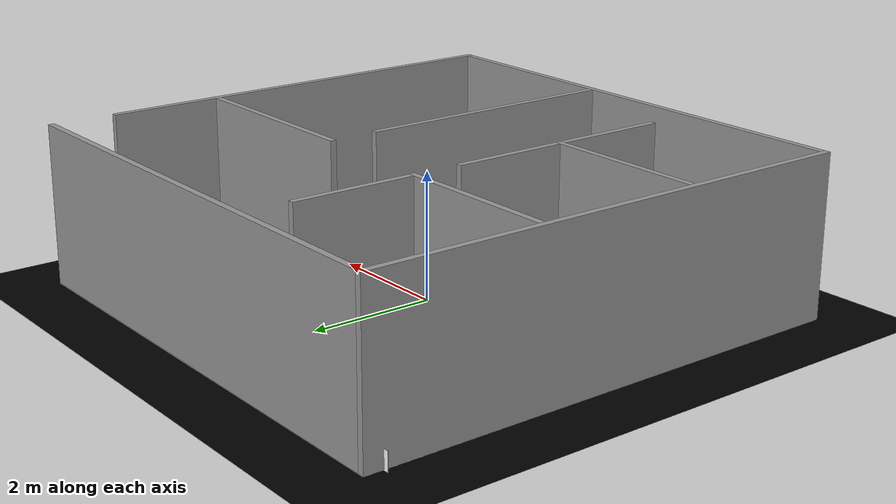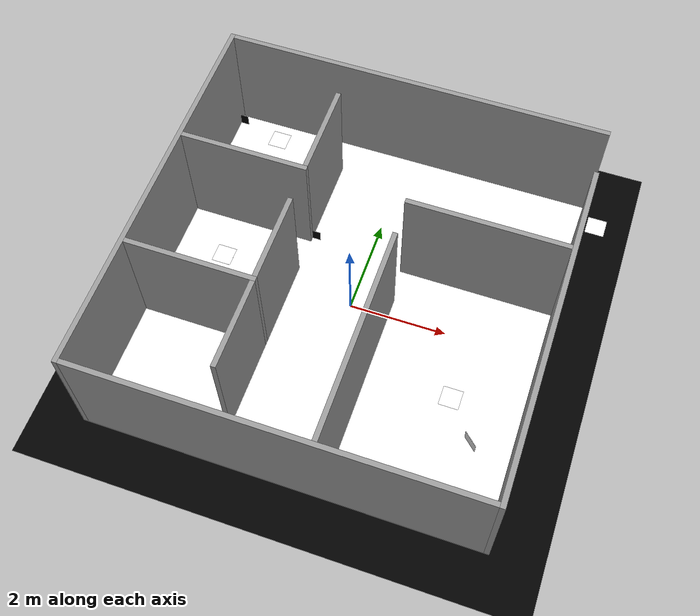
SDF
<sdf version="1.4">
  <world name="default">

      <physics name="1ms" type="ignored">
      <max_step_size>0.001</max_step_size>
      <real_time_factor>1.0</real_time_factor>
    </physics>
    <plugin
      filename="gz-sim-physics-system"
      name="gz::sim::systems::Physics">
    </plugin>
    <plugin
      filename="gz-sim-user-commands-system"
      name="gz::sim::systems::UserCommands">
    </plugin>
    <plugin
      filename="gz-sim-scene-broadcaster-system"
      name="gz::sim::systems::SceneBroadcaster">
    </plugin>

    <plugin
        filename="gz-sim-sensors-system"
        name="gz::sim::systems::Sensors">
        <render_engine>ogre2</render_engine>
    </plugin>

    <scene>
      <ambient>0.4 0.4 0.4 1</ambient>
      <background>0.7 0.7 0.7 1</background>
      <shadows>false</shadows>
    </scene>

    <!-- Arena lights -->
    <include>
    <name>light1</name>
      <uri>model://simple_light</uri>
      <pose>2 2 10 0 0 0</pose>
    </include>

    <include>
    <name>light2</name>
      <uri>model://simple_light</uri>
      <pose>-2 2 10 0 0 0</pose>
    </include>

    <include>
    <name>light3</name>
      <uri>model://simple_light</uri>
      <pose>-2 -2 10 0 0 0</pose>
    </include>

    <include>
    <name>light4</name>
      <uri>model://simple_light</uri>
      <pose>2 -2 10 0 0 0</pose>
    </include>

    <include>
      <uri>model://office_floor</uri>
    </include>

    <include>
      <uri>model://office_model</uri>
    </include>

    <include>
      <name>goal_marker_0</name>
      <uri>model://goal_marker_5</uri>
      <pose>2.5 -1.3 0.01 0 0 0</pose>
    </include>

    <include>
      <name>goal_marker_1</name>
      <uri>model://goal_marker_5</uri>
      <pose>-2.9 0.3 0.01 0 0 0</pose>
    </include>

    <include>
      <name>goal_marker_2</name>
      <uri>model://goal_marker_5</uri>
      <pose>-2.9 3.5 0.01 0 0 0</pose>
    </include>

    <include>
      <name>goal_marker_3</name>
      <uri>model://goal_marker_5</uri>
      <pose>4.3 3.5 0.01 0 0 0</pose>
    </include>

    <include>
      <name>marker_0</name>
      <uri>model://aruco_marker_0</uri>
      <pose>-1.40 -2.6 0.091 0 0 3.141592654</pose>
    </include>

    <include>
      <name>marker_1</name>
      <uri>model://aruco_marker_1</uri>
      <pose>0.0 -3.6 0.091 0 0 3.141592654</pose>
    </include>

    <include>
      <name>marker_2</name>
      <uri>model://aruco_marker_2</uri>
      <pose>3.1 -2.1 0.091 0 0 2.4</pose>
    </include>

    <include>
      <name>marker_3</name>
      <uri>model://aruco_marker_3</uri>
      <pose>-1.3 1.3 0.091 0 0 0</pose>
    </include>

    <include>
      <name>marker_4</name>
      <uri>model://aruco_marker_4</uri>
      <pose>-3.9 3.7 0.091 0 0 0</pose>
    </include>

    <include>
      <name>marker_5</name>
      <uri>model://aruco_marker_5</uri>
      <pose>-1.9 3.1 0.091 0 0 3.141592</pose>
    </include>

    <include>
      <name>marker_6</name>
      <uri>model://aruco_marker_6</uri>
      <pose>4.0 3.1 0.091 0 0 3.141592</pose>
    </include>

    <gui fullscreen='0'>
      <camera name='user_camera'>
        <pose>-8.0 -8.0 10.0 0 0.785 0.785</pose>
        <view_controller>orbit</view_controller>
      </camera>
    </gui>

  </world>
</sdf>

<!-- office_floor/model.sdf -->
<sdf version="1.5">
        <model name="puzzlebot_base">
            <static>true</static>
        <link name="link">
            <pose>0 0 0.0 0 0 1.5708 </pose>
            <collision name="collision">
                <geometry>
                <plane>
                    <normal>0 0 1</normal>
                    <size>10.0 10.0</size>
                </plane>
                </geometry>
                <surface>
                <contact>
                    <collide_bitmask>0xffff</collide_bitmask>
                    </contact>
                        <friction>
                        <ode>
                            <mu>100</mu>
                            <mu2>50</mu2>
                        </ode>
                        </friction>
                </surface>
            </collision>
            <visual name="visual">
                <pose>0 0 -0.001 0 0 0</pose>
                    <cast_shadows>false</cast_shadows>
                    <geometry>
                    <plane>
                        <normal>0 0 1</normal>
                        <size>10.0 10.0</size>
                    </plane>
                    </geometry>
                        <material>
                            <ambient>0 0 0 1</ambient>
                            <diffuse>0 0 0 1</diffuse>
                            <specular>0 0 0 1</specular>
                        </material>
                </visual>

                <visual name="mcr2_logo">
                <pose>0 0 0.0 0 0 0</pose>
                <cast_shadows>false</cast_shadows>
                <geometry>
                    <plane>
                    <normal>0 0 1</normal>
                    <size>8.0 8.0</size>
                    </plane>
                </geometry>
                        <material>
                            <ambient>1 1 1 1</ambient>
                            <diffuse>1 1 1 1</diffuse>
                            <specular>1 1 1 1</specular>
                            <pbr>
                                <metal>
                                <albedo_map>model://office_floor/materials/textures/puzzlebot_wood_7.png</albedo_map>
                                <normal_map>model://office_floor/materials/textures/puzzlebot_wood_7.png</normal_map>
                                </metal>
                            </pbr>
                        </material>
                </visual>
            </link>

        </model>
    </sdf>

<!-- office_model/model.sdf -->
<sdf version="1.5">
  <model name='office'>

    <static>1</static>

    <link name='Wall_10'>
        <pose>-3.950 0.0 1.25 0.0 0.0 0.0</pose>

        <visual name='Wall_10_Visual'>
            <pose>0 0 0 0 -0 0</pose>
            <geometry>
                <box>
                    <size>0.1 8.0 2.5</size>
                </box>
            </geometry>
              <material>
                <ambient>0.6 0.6 0.6 1</ambient>
                <diffuse>0.6 0.6 0.6 1</diffuse>
                <specular>0.6 0.6 0.6 1</specular>
              </material>
        <cast_shadows>0</cast_shadows>
      </visual>

      <collision name='Wall_10_Collision'>
        <max_contacts>10</max_contacts>
        <pose>0 0 0.0 0 0 0</pose>
        <geometry>
          <box>
            <size>0.1 8.0 2.5</size>
          </box>
        </geometry>
        <surface>
          <friction>
            <ode>
              <mu>1</mu>
              <mu2>1</mu2>
              <fdir1>0 0 0</fdir1>
              <slip1>0</slip1>
              <slip2>0</slip2>
            </ode>
          </friction>
          <bounce>
            <restitution_coefficient>0</restitution_coefficient>
            <threshold>1e+06</threshold>
          </bounce>
          <contact>
            <collide_without_contact>0</collide_without_contact>
            <collide_without_contact_bitmask>1</collide_without_contact_bitmask>
            <collide_bitmask>1</collide_bitmask>
            <ode>
              <soft_cfm>0</soft_cfm>
              <soft_erp>0.2</soft_erp>
              <kp>1e+13</kp>
              <kd>1</kd>
              <max_vel>0.01</max_vel>
              <min_depth>0</min_depth>
            </ode>
            <bullet>
              <split_impulse>1</split_impulse>
              <split_impulse_penetration_threshold>-0.01</split_impulse_penetration_threshold>
              <soft_cfm>0</soft_cfm>
              <soft_erp>0.2</soft_erp>
              <kp>1e+13</kp>
              <kd>1</kd>
            </bullet>
          </contact>
        </surface>
      </collision>
    </link>

    <link name='Wall_20'>
          <pose>3.950 -0.525 1.25 0.0 0.0 0.0</pose>

          <visual name='Wall_20_Visual'>
              <pose>0 0 0 0 -0 0</pose>
              <geometry>
                  <box>
                      <size>0.1 6.950 2.5</size>
                  </box>
              </geometry>
              <material>
                <ambient>0.6 0.6 0.6 1</ambient>
                <diffuse>0.6 0.6 0.6 1</diffuse>
                <specular>0.6 0.6 0.6 1</specular>
              </material>
          <cast_shadows>0</cast_shadows>
        </visual>

        <collision name='Wall_20_Collision'>
          <max_contacts>10</max_contacts>
          <pose>0 0 0.0 0 0 0</pose>
          <geometry>
            <box>
              <size>0.1 6.950 2.5</size>
            </box>
          </geometry>
          <surface>
            <friction>
              <ode>
                <mu>1</mu>
                <mu2>1</mu2>
                <fdir1>0 0 0</fdir1>
                <slip1>0</slip1>
                <slip2>0</slip2>
              </ode>
            </friction>
            <bounce>
              <restitution_coefficient>0</restitution_coefficient>
              <threshold>1e+06</threshold>
            </bounce>
            <contact>
              <collide_without_contact>0</collide_without_contact>
              <collide_without_contact_bitmask>1</collide_without_contact_bitmask>
              <collide_bitmask>1</collide_bitmask>
              <ode>
                <soft_cfm>0</soft_cfm>
                <soft_erp>0.2</soft_erp>
                <kp>1e+13</kp>
                <kd>1</kd>
                <max_vel>0.01</max_vel>
                <min_depth>0</min_depth>
              </ode>
              <bullet>
                <split_impulse>1</split_impulse>
                <split_impulse_penetration_threshold>-0.01</split_impulse_penetration_threshold>
                <soft_cfm>0</soft_cfm>
                <soft_erp>0.2</soft_erp>
                <kp>1e+13</kp>
                <kd>1</kd>
              </bullet>
            </contact>
          </surface>
        </collision>
    </link>

    <link name='Wall_30'>
        <pose>0.0 -3.950 1.25 0.0 0.0 0.0</pose>

        <visual name='Wall_30_Visual'>
            <pose>0 0 0 0 -0 0</pose>
            <geometry>
                <box>
                    <size>7.8 0.1 2.5</size>
                </box>
            </geometry>
              <material>
                <ambient>0.6 0.6 0.6 1</ambient>
                <diffuse>0.6 0.6 0.6 1</diffuse>
                <specular>0.6 0.6 0.6 1</specular>
              </material>
        <cast_shadows>0</cast_shadows>
      </visual>

      <collision name='Wall_30_Collision'>
        <max_contacts>10</max_contacts>
        <pose>0 0 0.0 0 0 0</pose>
        <geometry>
          <box>
            <size>7.8 0.1 2.5</size>
          </box>
        </geometry>
        <surface>
          <friction>
            <ode>
              <mu>1</mu>
              <mu2>1</mu2>
              <fdir1>0 0 0</fdir1>
              <slip1>0</slip1>
              <slip2>0</slip2>
            </ode>
          </friction>
          <bounce>
            <restitution_coefficient>0</restitution_coefficient>
            <threshold>1e+06</threshold>
          </bounce>
          <contact>
            <collide_without_contact>0</collide_without_contact>
            <collide_without_contact_bitmask>1</collide_without_contact_bitmask>
            <collide_bitmask>1</collide_bitmask>
            <ode>
              <soft_cfm>0</soft_cfm>
              <soft_erp>0.2</soft_erp>
              <kp>1e+13</kp>
              <kd>1</kd>
              <max_vel>0.01</max_vel>
              <min_depth>0</min_depth>
            </ode>
            <bullet>
              <split_impulse>1</split_impulse>
              <split_impulse_penetration_threshold>-0.01</split_impulse_penetration_threshold>
              <soft_cfm>0</soft_cfm>
              <soft_erp>0.2</soft_erp>
              <kp>1e+13</kp>
              <kd>1</kd>
            </bullet>
          </contact>
        </surface>
      </collision>
    </link>

    <link name='Wall_40'>
        <pose>0.05 3.950 1.25 0.0 0.0 0.0</pose>

        <visual name='Wall_40_Visual'>
            <pose>0 0 0 0 -0 0</pose>
            <geometry>
                <box>
                    <size>7.9 0.1 2.5</size>
                </box>
            </geometry>
              <material>
                <ambient>0.6 0.6 0.6 1</ambient>
                <diffuse>0.6 0.6 0.6 1</diffuse>
                <specular>0.6 0.6 0.6 1</specular>
              </material>
        <cast_shadows>0</cast_shadows>
      </visual>

      <collision name='Wall_40_Collision'>
        <max_contacts>10</max_contacts>
        <pose>0 0 0.0 0 0 0</pose>
        <geometry>
          <box>
            <size>7.9 0.1 2.5</size>
          </box>
        </geometry>
        <surface>
          <friction>
            <ode>
              <mu>1</mu>
              <mu2>1</mu2>
              <fdir1>0 0 0</fdir1>
              <slip1>0</slip1>
              <slip2>0</slip2>
            </ode>
          </friction>
          <bounce>
            <restitution_coefficient>0</restitution_coefficient>
            <threshold>1e+06</threshold>
          </bounce>
          <contact>
            <collide_without_contact>0</collide_without_contact>
            <collide_without_contact_bitmask>1</collide_without_contact_bitmask>
            <collide_bitmask>1</collide_bitmask>
            <ode>
              <soft_cfm>0</soft_cfm>
              <soft_erp>0.2</soft_erp>
              <kp>1e+13</kp>
              <kd>1</kd>
              <max_vel>0.01</max_vel>
              <min_depth>0</min_depth>
            </ode>
            <bullet>
              <split_impulse>1</split_impulse>
              <split_impulse_penetration_threshold>-0.01</split_impulse_penetration_threshold>
              <soft_cfm>0</soft_cfm>
              <soft_erp>0.2</soft_erp>
              <kp>1e+13</kp>
              <kd>1</kd>
            </bullet>
          </contact>
        </surface>
      </collision>
    </link>

    <link name='Wall_50'>
        <pose>-1.35 -2.3 1.25 0.0 0.0 0.0</pose>

        <visual name='Wall_50_Visual'>
            <pose>0 0 0 0 -0 0</pose>
            <geometry>
                <box>
                    <size>0.1 1.8 2.5</size>
                </box>
            </geometry>
              <material>
                <ambient>0.6 0.6 0.6 1</ambient>
                <diffuse>0.6 0.6 0.6 1</diffuse>
                <specular>0.6 0.6 0.6 1</specular>
              </material>
        <cast_shadows>0</cast_shadows>
      </visual>

      <collision name='Wall_50_Collision'>
        <max_contacts>10</max_contacts>
        <pose>0 0 0.0 0 0 0</pose>
        <geometry>
          <box>
            <size>0.1 1.8 2.5</size>
          </box>
        </geometry>
        <surface>
          <friction>
            <ode>
              <mu>1</mu>
              <mu2>1</mu2>
              <fdir1>0 0 0</fdir1>
              <slip1>0</slip1>
              <slip2>0</slip2>
            </ode>
          </friction>
          <bounce>
            <restitution_coefficient>0</restitution_coefficient>
            <threshold>1e+06</threshold>
          </bounce>
          <contact>
            <collide_without_contact>0</collide_without_contact>
            <collide_without_contact_bitmask>1</collide_without_contact_bitmask>
            <collide_bitmask>1</collide_bitmask>
            <ode>
              <soft_cfm>0</soft_cfm>
              <soft_erp>0.2</soft_erp>
              <kp>1e+13</kp>
              <kd>1</kd>
              <max_vel>0.01</max_vel>
              <min_depth>0</min_depth>
            </ode>
            <bullet>
              <split_impulse>1</split_impulse>
              <split_impulse_penetration_threshold>-0.01</split_impulse_penetration_threshold>
              <soft_cfm>0</soft_cfm>
              <soft_erp>0.2</soft_erp>
              <kp>1e+13</kp>
              <kd>1</kd>
            </bullet>
          </contact>
        </surface>
      </collision>
    </link>

    <link name='Wall_60'>
        <pose>0.75 -1.75 1.25 0.0 0.0 0.0</pose>

        <visual name='Wall_60_Visual'>
            <pose>0 0 0 0 -0 0</pose>
            <geometry>
                <box>
                    <size>0.1 4.3 2.5</size>
                </box>
            </geometry>
              <material>
                <ambient>0.6 0.6 0.6 1</ambient>
                <diffuse>0.6 0.6 0.6 1</diffuse>
                <specular>0.6 0.6 0.6 1</specular>
              </material>
        <cast_shadows>0</cast_shadows>
      </visual>

      <collision name='Wall_60_Collision'>
        <max_contacts>10</max_contacts>
        <pose>0 0 0.0 0 0 0</pose>
        <geometry>
          <box>
            <size>0.1 4.3 2.5</size>
          </box>
        </geometry>
        <surface>
          <friction>
            <ode>
              <mu>1</mu>
              <mu2>1</mu2>
              <fdir1>0 0 0</fdir1>
              <slip1>0</slip1>
              <slip2>0</slip2>
            </ode>
          </friction>
          <bounce>
            <restitution_coefficient>0</restitution_coefficient>
            <threshold>1e+06</threshold>
          </bounce>
          <contact>
            <collide_without_contact>0</collide_without_contact>
            <collide_without_contact_bitmask>1</collide_without_contact_bitmask>
            <collide_bitmask>1</collide_bitmask>
            <ode>
              <soft_cfm>0</soft_cfm>
              <soft_erp>0.2</soft_erp>
              <kp>1e+13</kp>
              <kd>1</kd>
              <max_vel>0.01</max_vel>
              <min_depth>0</min_depth>
            </ode>
            <bullet>
              <split_impulse>1</split_impulse>
              <split_impulse_penetration_threshold>-0.01</split_impulse_penetration_threshold>
              <soft_cfm>0</soft_cfm>
              <soft_erp>0.2</soft_erp>
              <kp>1e+13</kp>
              <kd>1</kd>
            </bullet>
          </contact>
        </surface>
      </collision>
    </link>

    <link name='Wall_70'>
        <pose>-2.6 -1.35 1.25 0.0 0.0 0.0</pose>

        <visual name='Wall_70_Visual'>
            <pose>0 0 0 0 -0 0</pose>
            <geometry>
                <box>
                    <size>2.6 0.1 2.5</size>
                </box>
            </geometry>
              <material>
                <ambient>0.6 0.6 0.6 1</ambient>
                <diffuse>0.6 0.6 0.6 1</diffuse>
                <specular>0.6 0.6 0.6 1</specular>
              </material>
        <cast_shadows>0</cast_shadows>
      </visual>

      <collision name='Wall_70_Collision'>
        <max_contacts>10</max_contacts>
        <pose>0 0 0.0 0 0 0</pose>
        <geometry>
          <box>
            <size>2.6 0.1 2.5</size>
          </box>
        </geometry>
        <surface>
          <friction>
            <ode>
              <mu>1</mu>
              <mu2>1</mu2>
              <fdir1>0 0 0</fdir1>
              <slip1>0</slip1>
              <slip2>0</slip2>
            </ode>
          </friction>
          <bounce>
            <restitution_coefficient>0</restitution_coefficient>
            <threshold>1e+06</threshold>
          </bounce>
          <contact>
            <collide_without_contact>0</collide_without_contact>
            <collide_without_contact_bitmask>1</collide_without_contact_bitmask>
            <collide_bitmask>1</collide_bitmask>
            <ode>
              <soft_cfm>0</soft_cfm>
              <soft_erp>0.2</soft_erp>
              <kp>1e+13</kp>
              <kd>1</kd>
              <max_vel>0.01</max_vel>
              <min_depth>0</min_depth>
            </ode>
            <bullet>
              <split_impulse>1</split_impulse>
              <split_impulse_penetration_threshold>-0.01</split_impulse_penetration_threshold>
              <soft_cfm>0</soft_cfm>
              <soft_erp>0.2</soft_erp>
              <kp>1e+13</kp>
              <kd>1</kd>
            </bullet>
          </contact>
        </surface>
      </collision>
    </link>

    <link name='Wall_80'>
        <pose>-1.35 -0.4 1.25 0.0 0.0 0.0</pose>

        <visual name='Wall_80_Visual'>
            <pose>0 0 0 0 -0 0</pose>
            <geometry>
                <box>
                    <size>0.1 1.8 2.5</size>
                </box>
            </geometry>
              <material>
                <ambient>0.6 0.6 0.6 1</ambient>
                <diffuse>0.6 0.6 0.6 1</diffuse>
                <specular>0.6 0.6 0.6 1</specular>
              </material>
        <cast_shadows>0</cast_shadows>
      </visual>

      <collision name='Wall_80_Collision'>
        <max_contacts>10</max_contacts>
        <pose>0 0 0.0 0 0 0</pose>
        <geometry>
          <box>
            <size>0.1 1.8 2.5</size>
          </box>
        </geometry>
        <surface>
          <friction>
            <ode>
              <mu>1</mu>
              <mu2>1</mu2>
              <fdir1>0 0 0</fdir1>
              <slip1>0</slip1>
              <slip2>0</slip2>
            </ode>
          </friction>
          <bounce>
            <restitution_coefficient>0</restitution_coefficient>
            <threshold>1e+06</threshold>
          </bounce>
          <contact>
            <collide_without_contact>0</collide_without_contact>
            <collide_without_contact_bitmask>1</collide_without_contact_bitmask>
            <collide_bitmask>1</collide_bitmask>
            <ode>
              <soft_cfm>0</soft_cfm>
              <soft_erp>0.2</soft_erp>
              <kp>1e+13</kp>
              <kd>1</kd>
              <max_vel>0.01</max_vel>
              <min_depth>0</min_depth>
            </ode>
            <bullet>
              <split_impulse>1</split_impulse>
              <split_impulse_penetration_threshold>-0.01</split_impulse_penetration_threshold>
              <soft_cfm>0</soft_cfm>
              <soft_erp>0.2</soft_erp>
              <kp>1e+13</kp>
              <kd>1</kd>
            </bullet>
          </contact>
        </surface>
      </collision>
    </link>

    <link name='Wall_90'>
        <pose>2.3 1.15 1.25 0.0 0.0 0.0</pose>

        <visual name='Wall_90_Visual'>
            <pose>0 0 0 0 -0 0</pose>
            <geometry>
                <box>
                    <size>3.2 0.1 2.5</size>
                </box>
            </geometry>
              <material>
                <ambient>0.6 0.6 0.6 1</ambient>
                <diffuse>0.6 0.6 0.6 1</diffuse>
                <specular>0.6 0.6 0.6 1</specular>
              </material>
        <cast_shadows>0</cast_shadows>
      </visual>

      <collision name='Wall_90_Collision'>
        <max_contacts>10</max_contacts>
        <pose>0 0 0.0 0 0 0</pose>
        <geometry>
          <box>
            <size>3.2 0.1 2.5</size>
          </box>
        </geometry>
        <surface>
          <friction>
            <ode>
              <mu>1</mu>
              <mu2>1</mu2>
              <fdir1>0 0 0</fdir1>
              <slip1>0</slip1>
              <slip2>0</slip2>
            </ode>
          </friction>
          <bounce>
            <restitution_coefficient>0</restitution_coefficient>
            <threshold>1e+06</threshold>
          </bounce>
          <contact>
            <collide_without_contact>0</collide_without_contact>
            <collide_without_contact_bitmask>1</collide_without_contact_bitmask>
            <collide_bitmask>1</collide_bitmask>
            <ode>
              <soft_cfm>0</soft_cfm>
              <soft_erp>0.2</soft_erp>
              <kp>1e+13</kp>
              <kd>1</kd>
              <max_vel>0.01</max_vel>
              <min_depth>0</min_depth>
            </ode>
            <bullet>
              <split_impulse>1</split_impulse>
              <split_impulse_penetration_threshold>-0.01</split_impulse_penetration_threshold>
              <soft_cfm>0</soft_cfm>
              <soft_erp>0.2</soft_erp>
              <kp>1e+13</kp>
              <kd>1</kd>
            </bullet>
          </contact>
        </surface>
      </collision>
    </link>

    <link name='Wall_100'>
        <pose>-2.6 1.25 1.25 0.0 0.0 0.0</pose>

        <visual name='Wall_100_Visual'>
            <pose>0 0 0 0 -0 0</pose>
            <geometry>
                <box>
                    <size>2.6 0.1 2.5</size>
                </box>
            </geometry>
              <material>
                <ambient>0.6 0.6 0.6 1</ambient>
                <diffuse>0.6 0.6 0.6 1</diffuse>
                <specular>0.6 0.6 0.6 1</specular>
              </material>
        <cast_shadows>0</cast_shadows>
      </visual>

      <collision name='Wall_100_Collision'>
        <max_contacts>10</max_contacts>
        <pose>0 0 0.0 0 0 0</pose>
        <geometry>
          <box>
            <size>2.6 0.1 2.5</size>
          </box>
        </geometry>
        <surface>
          <friction>
            <ode>
              <mu>1</mu>
              <mu2>1</mu2>
              <fdir1>0 0 0</fdir1>
              <slip1>0</slip1>
              <slip2>0</slip2>
            </ode>
          </friction>
          <bounce>
            <restitution_coefficient>0</restitution_coefficient>
            <threshold>1e+06</threshold>
          </bounce>
          <contact>
            <collide_without_contact>0</collide_without_contact>
            <collide_without_contact_bitmask>1</collide_without_contact_bitmask>
            <collide_bitmask>1</collide_bitmask>
            <ode>
              <soft_cfm>0</soft_cfm>
              <soft_erp>0.2</soft_erp>
              <kp>1e+13</kp>
              <kd>1</kd>
              <max_vel>0.01</max_vel>
              <min_depth>0</min_depth>
            </ode>
            <bullet>
              <split_impulse>1</split_impulse>
              <split_impulse_penetration_threshold>-0.01</split_impulse_penetration_threshold>
              <soft_cfm>0</soft_cfm>
              <soft_erp>0.2</soft_erp>
              <kp>1e+13</kp>
              <kd>1</kd>
            </bullet>
          </contact>
        </surface>
      </collision>
    </link>

    <link name='Wall_110'>
        <pose>-1.35 2.25 1.25 0.0 0.0 0.0</pose>

        <visual name='Wall_110_Visual'>
            <pose>0 0 0 0 -0 0</pose>
            <geometry>
                <box>
                    <size>0.1 1.9 2.5</size>
                </box>
            </geometry>
              <material>
                <ambient>0.6 0.6 0.6 1</ambient>
                <diffuse>0.6 0.6 0.6 1</diffuse>
                <specular>0.6 0.6 0.6 1</specular>
              </material>
        <cast_shadows>0</cast_shadows>
      </visual>

      <collision name='Wall_110_Collision'>
        <max_contacts>10</max_contacts>
        <pose>0 0 0.0 0 0 0</pose>
        <geometry>
          <box>
            <size>0.1 1.9 2.5</size>
          </box>
        </geometry>
        <surface>
          <friction>
            <ode>
              <mu>1</mu>
              <mu2>1</mu2>
              <fdir1>0 0 0</fdir1>
              <slip1>0</slip1>
              <slip2>0</slip2>
            </ode>
          </friction>
          <bounce>
            <restitution_coefficient>0</restitution_coefficient>
            <threshold>1e+06</threshold>
          </bounce>
          <contact>
            <collide_without_contact>0</collide_without_contact>
            <collide_without_contact_bitmask>1</collide_without_contact_bitmask>
            <collide_bitmask>1</collide_bitmask>
            <ode>
              <soft_cfm>0</soft_cfm>
              <soft_erp>0.2</soft_erp>
              <kp>1e+13</kp>
              <kd>1</kd>
              <max_vel>0.01</max_vel>
              <min_depth>0</min_depth>
            </ode>
            <bullet>
              <split_impulse>1</split_impulse>
              <split_impulse_penetration_threshold>-0.01</split_impulse_penetration_threshold>
              <soft_cfm>0</soft_cfm>
              <soft_erp>0.2</soft_erp>
              <kp>1e+13</kp>
              <kd>1</kd>
            </bullet>
          </contact>
        </surface>
      </collision>
    </link>

  </model>
  </sdf>

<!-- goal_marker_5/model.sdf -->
<sdf version="1.5">
        <model name="goal_marker_5">
            <static>true</static>
                <link name="link">
                    <pose>0 0 0 0 0 0</pose>
                    <visual name="visual">
                        <cast_shadows>false</cast_shadows>
                        <geometry>
                            <plane>
                                    <normal>0 0 1</normal>
                                    <size>0.4 0.4</size>
                            </plane>
                        </geometry>
                        <material>
                            <ambient>1 1 1 1</ambient>
                            <diffuse>1 1 1 1</diffuse>
                            <specular>1 1 1 1</specular>
                            <pbr>
                                <metal>
                                <albedo_map>model://goal_marker_5/materials/textures/mcr2_goal_5.png</albedo_map>
                                <normal_map>model://goal_marker_5/materials/textures/mcr2_goal_5.png</normal_map>
                                </metal>
                            </pbr>
                        </material>
                    </visual>
                </link>
        </model>
    </sdf>

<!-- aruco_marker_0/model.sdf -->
<sdf version='1.6'>
  <model name='aruco_marker_0'>
    <link name='link_0'>
      <pose frame=''>0 0 0 0 -0 0</pose>
      <inertial>
        <mass>1</mass>
        <inertia>
          <ixx>0</ixx>
          <ixy>0</ixy>
          <ixz>0</ixz>
          <iyy>0</iyy>
          <iyz>0</iyz>
          <izz>0</izz>
        </inertia>
      </inertial>
      <visual name='visual'>
        <pose frame=''>0 0 0 0 -0 0</pose>
        <geometry>
          <mesh>
            <uri>file://isr-testbed/aruco_marker_0/aruco_marker_0.dae</uri>
            <scale>0.1 0.1 0.1</scale>
          </mesh>
        </geometry>
        <material>
          <lighting>1</lighting>
          <script>
            <uri>file://media/materials/scripts/gazebo.material</uri>
            <name>Gazebo/DepthMapVS</name>
          </script>
          <ambient>0.3 0.3 0.3 1</ambient>
          <diffuse>0.7 0.7 0.7 1</diffuse>
          <specular>0.01 0.01 0.01 1</specular>
          <emissive>0 0 0 1</emissive>
        </material>
        <transparency>0</transparency>
        <cast_shadows>1</cast_shadows>
      </visual>
      <collision name='collision'>
        <laser_retro>0</laser_retro>
        <max_contacts>10</max_contacts>
        <pose frame=''>0 0 0 0 -0 0</pose>
        <geometry>
          <mesh>
            <uri>file://isr-testbed/aruco_marker_0/aruco_marker_0.dae</uri>
            <scale>0.1 0.1 0.1</scale>
          </mesh>
        </geometry>
        <surface>
          <friction>
            <ode>
              <mu>1</mu>
              <mu2>1</mu2>
              <fdir1>0 0 0</fdir1>
              <slip1>0</slip1>
              <slip2>0</slip2>
            </ode>
            <torsional>
              <coefficient>1</coefficient>
              <patch_radius>0</patch_radius>
              <surface_radius>0</surface_radius>
              <use_patch_radius>1</use_patch_radius>
              <ode>
                <slip>0</slip>
              </ode>
            </torsional>
          </friction>
          <bounce>
            <restitution_coefficient>0</restitution_coefficient>
            <threshold>1e+06</threshold>
          </bounce>
          <contact>
            <collide_without_contact>0</collide_without_contact>
            <collide_without_contact_bitmask>1</collide_without_contact_bitmask>
            <collide_bitmask>1</collide_bitmask>
            <ode>
              <soft_cfm>0</soft_cfm>
              <soft_erp>0.2</soft_erp>
              <kp>1e+13</kp>
              <kd>1</kd>
              <max_vel>0.01</max_vel>
              <min_depth>0</min_depth>
            </ode>
            <bullet>
              <split_impulse>1</split_impulse>
              <split_impulse_penetration_threshold>-0.01</split_impulse_penetration_threshold>
              <soft_cfm>0</soft_cfm>
              <soft_erp>0.2</soft_erp>
              <kp>1e+13</kp>
              <kd>1</kd>
            </bullet>
          </contact>
        </surface>
      </collision>
    </link>
    <static>1</static>
    <allow_auto_disable>1</allow_auto_disable>
  </model>
</sdf>

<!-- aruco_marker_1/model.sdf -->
<sdf version="1.9">
  <model name="aruco_marker_1">
    <static>true</static>

    <link name="link">
      <visual name="front">
        <pose>0 0 0 0 0 0</pose>
        <geometry>
          <box>
            <size>0.35 0.002 0.35</size>
          </box>
        </geometry>

        <material>
          <ambient>1 1 1 1</ambient>
          <diffuse>1 1 1 1</diffuse>
          <specular>0.1 0.1 0.1 1</specular>
          <emissive>0 0 0 1</emissive>

          <pbr>
            <metal>
              <albedo_map>
                model://aruco/aruco_marker_1/materials/textures/marker_1.png
              </albedo_map>
              <emissive_map>
                model://aruco/aruco_marker_1/materials/textures/marker_1.png
              </emissive_map>
            </metal>
          </pbr>
        </material>
      </visual>

      <visual name="back">
        <pose>0 -0.002 0 0 0 3.1416</pose>
        <geometry>
          <box>
            <size>0.35 0.002 0.35</size>
          </box>
        </geometry>
        <material>
          <ambient>0 0 0 1</ambient>
          <diffuse>0 0 0 1</diffuse>
        </material>
      </visual>

    </link>

  </model>
</sdf>

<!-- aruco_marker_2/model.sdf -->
<sdf version="1.9">
  <model name="aruco_marker_2">
    <static>true</static>

    <link name="link">
      <visual name="front">
        <pose>0 0 0 0 0 0</pose>
        <geometry>
          <box>
            <size>0.35 0.002 0.35</size>
          </box>
        </geometry>

        <material>
          <ambient>1 1 1 1</ambient>
          <diffuse>1 1 1 1</diffuse>
          <specular>0.1 0.1 0.1 1</specular>
          <emissive>0 0 0 1</emissive>

          <pbr>
            <metal>
              <albedo_map>
                model://aruco/aruco_marker_2/materials/textures/marker_2.png
              </albedo_map>
              <emissive_map>
                model://aruco/aruco_marker_2/materials/textures/marker_2.png
              </emissive_map>
            </metal>
          </pbr>
        </material>
      </visual>

      <visual name="back">
        <pose>0 -0.002 0 0 0 3.1416</pose>
        <geometry>
          <box>
            <size>0.35 0.002 0.35</size>
          </box>
        </geometry>
        <material>
          <ambient>0 0 0 1</ambient>
          <diffuse>0 0 0 1</diffuse>
        </material>
      </visual>

    </link>

  </model>
</sdf>

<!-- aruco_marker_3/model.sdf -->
<sdf version="1.9">
  <model name="aruco_marker_3">
    <static>true</static>

    <link name="link">
      <visual name="front">
        <pose>0 0 0 0 0 0</pose>
        <geometry>
          <box>
            <size>0.35 0.002 0.35</size>
          </box>
        </geometry>

        <material>
          <ambient>1 1 1 1</ambient>
          <diffuse>1 1 1 1</diffuse>
          <specular>0.1 0.1 0.1 1</specular>
          <emissive>0 0 0 1</emissive>

          <pbr>
            <metal>
              <albedo_map>
                model://aruco/aruco_marker_3/materials/textures/marker_3.png
              </albedo_map>
              <emissive_map>
                model://aruco/aruco_marker_3/materials/textures/marker_3.png
              </emissive_map>
            </metal>
          </pbr>
        </material>
      </visual>

      <visual name="back">
        <pose>0 -0.002 0 0 0 3.1416</pose>
        <geometry>
          <box>
            <size>0.35 0.002 0.35</size>
          </box>
        </geometry>
        <material>
          <ambient>0 0 0 1</ambient>
          <diffuse>0 0 0 1</diffuse>
        </material>
      </visual>

    </link>

  </model>
</sdf>

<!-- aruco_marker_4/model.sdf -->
<sdf version="1.9">
  <model name="aruco_marker_4">
    <static>true</static>

    <link name="link">
      <visual name="front">
        <pose>0 0 0 0 0 0</pose>
        <geometry>
          <box>
            <size>0.35 0.002 0.35</size>
          </box>
        </geometry>

        <material>
          <ambient>1 1 1 1</ambient>
          <diffuse>1 1 1 1</diffuse>
          <specular>0.1 0.1 0.1 1</specular>
          <emissive>0 0 0 1</emissive>

          <pbr>
            <metal>
              <albedo_map>
                model://aruco/aruco_marker_4/materials/textures/marker_4.png
              </albedo_map>
              <emissive_map>
                model://aruco/aruco_marker_4/materials/textures/marker_4.png
              </emissive_map>
            </metal>
          </pbr>
        </material>
      </visual>

      <visual name="back">
        <pose>0 -0.002 0 0 0 3.1416</pose>
        <geometry>
          <box>
            <size>0.35 0.002 0.35</size>
          </box>
        </geometry>
        <material>
          <ambient>0 0 0 1</ambient>
          <diffuse>0 0 0 1</diffuse>
        </material>
      </visual>

    </link>

  </model>
</sdf>

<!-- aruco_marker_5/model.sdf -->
<sdf version="1.9">
  <model name="aruco_marker_5">
    <static>true</static>

    <link name="link">
      <visual name="front">
        <pose>0 0 0 0 0 0</pose>
        <geometry>
          <box>
            <size>0.35 0.002 0.35</size>
          </box>
        </geometry>

        <material>
          <ambient>1 1 1 1</ambient>
          <diffuse>1 1 1 1</diffuse>
          <specular>0.1 0.1 0.1 1</specular>
          <emissive>0 0 0 1</emissive>

          <pbr>
            <metal>
              <albedo_map>
                model://aruco/aruco_marker_5/materials/textures/marker_5.png
              </albedo_map>
              <emissive_map>
                model://aruco/aruco_marker_5/materials/textures/marker_5.png
              </emissive_map>
            </metal>
          </pbr>
        </material>
      </visual>

      <visual name="back">
        <pose>0 -0.002 0 0 0 3.1416</pose>
        <geometry>
          <box>
            <size>0.35 0.002 0.35</size>
          </box>
        </geometry>
        <material>
          <ambient>0 0 0 1</ambient>
          <diffuse>0 0 0 1</diffuse>
        </material>
      </visual>

    </link>

  </model>
</sdf>

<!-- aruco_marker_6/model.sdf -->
<sdf version="1.5">

    <model name='aruco_marker_7'>
        <pose>0 0 0 0 0 0</pose>
        <static>true</static>
        <link name='link'>
            <inertial>
                <pose>0 0 0 0 -0 0</pose>
                <mass>0.281</mass>
                <inertia>
                    <ixx>0.0006167</ixx>
                    <ixy>0</ixy>
                    <ixz>0</ixz>
                    <iyy>0.0006167</iyy>
                    <iyz>0</iyz>
                    <izz>0.0006167</izz>
                </inertia>
            </inertial>
            <collision name="collision">
                <geometry>
                    <box>
                        <size>0.001 0.18 0.18</size>
                    </box>
                </geometry>
                <surface>
                    <contact>
                        <ode>
                            <max_vel>1</max_vel>
                            <min_depth>0.001</min_depth>
                            <kp>1000000</kp>
                            <kd>10</kd>
                        </ode>
                    </contact>
                    <friction>
                        <ode>
                            <mu>1</mu>
                            <mu2>1</mu2>
                        </ode>
                    </friction>
                </surface>
            </collision>

            <visual name='box_visual'>
                <cast_shadows>0</cast_shadows>
                    <geometry>
                        <box>
                            <size>0.001 0.18 0.18</size>
                        </box>
                    </geometry>
                <material>
                    <ambient>1 1 1 1</ambient>
                    <diffuse>1 1 1 1</diffuse>
                    <specular>1 1 1 1</specular>
                    <emissive>0.6 0.6 0.6 1</emissive>
                </material>
            </visual>

            <visual name='aruco_visual1'>
                <cast_shadows>0</cast_shadows>
                <pose>0.00065 0.0 0.0 1.5708 0.0 1.5708</pose>
                <geometry>
                    <plane>
                        <normal>0 0 1</normal>
                        <size>0.14 0.14</size>
                    </plane>
                </geometry>
                <material>
                    <pbr>
                        <metal>
                            <albedo_map>model://aruco_marker_6/materials/textures/marker6.png</albedo_map>
                            <normal_map>model://aruco_marker_6/materials/textures/marker6.png</normal_map>
                        </metal>
                    </pbr>
                    <ambient>1 1 1 1</ambient>
                    <diffuse>1 1 1 1</diffuse>
                    <specular>1 1 1 1</specular>
                    <emissive>0.0 0.0 0.0 1</emissive>
                </material>
            </visual>

        </link>
    </model>
</sdf>
